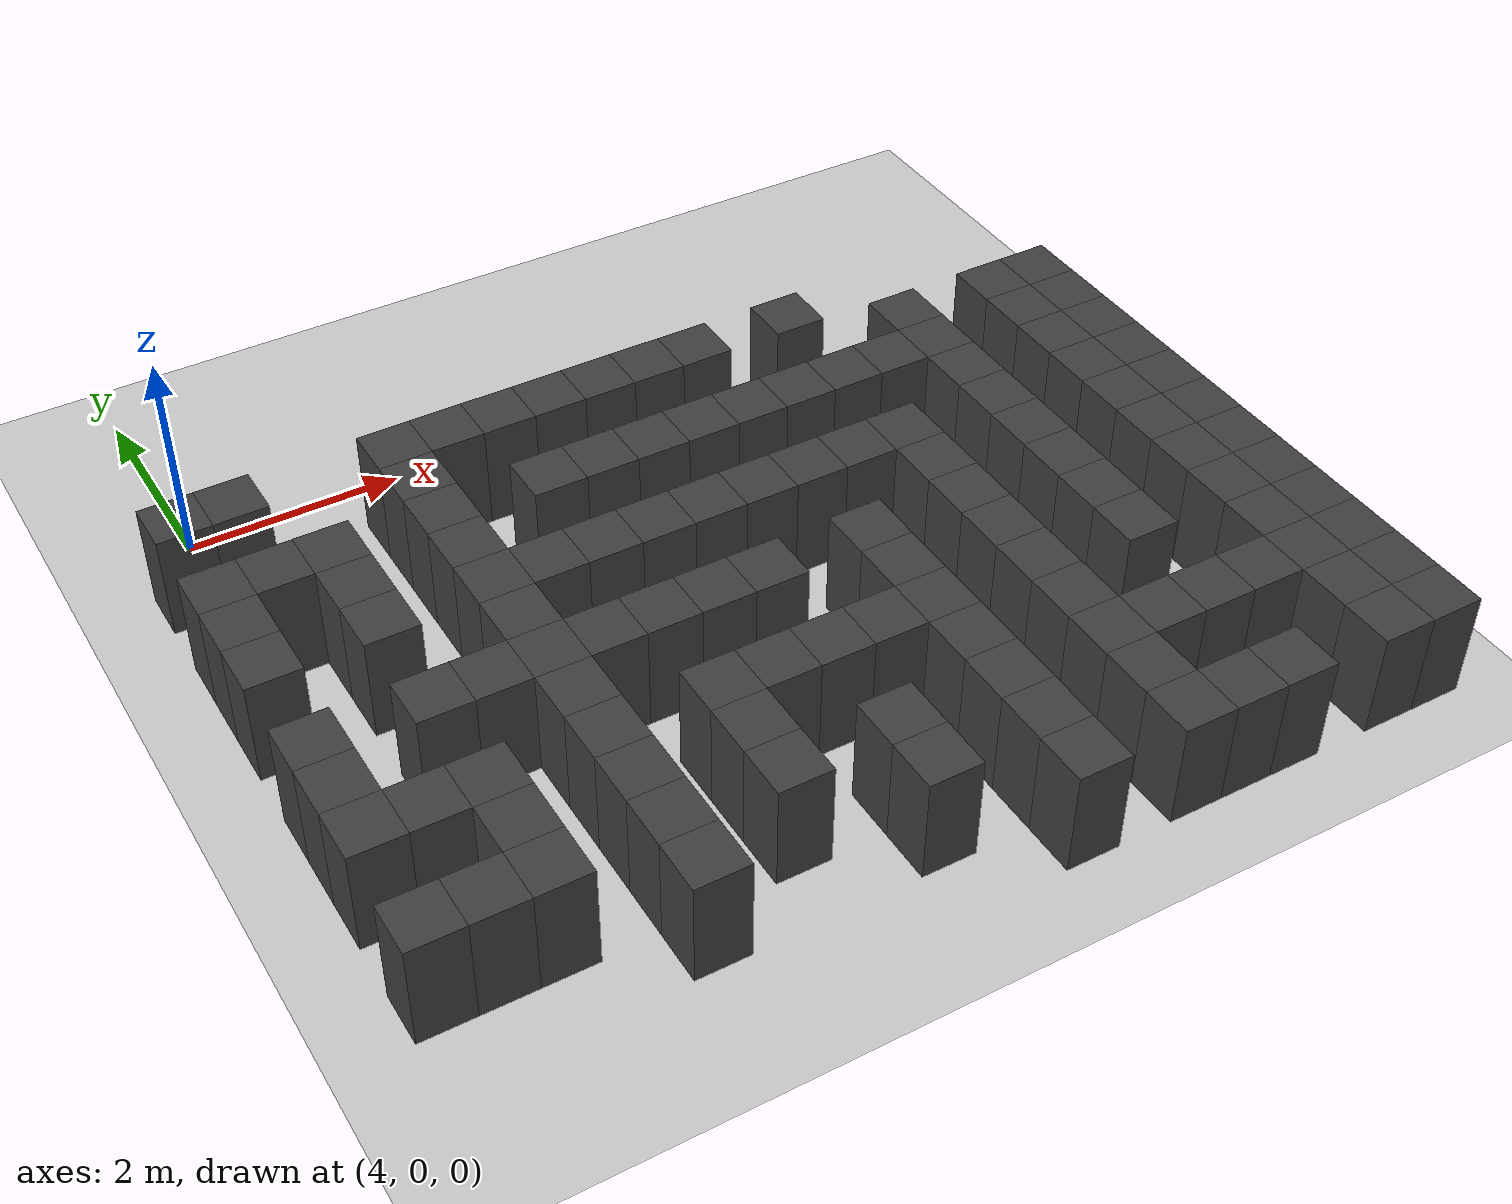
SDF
<sdf version="1.7">
 <world name="map_18553">
  <model name="ground_plane">
   <static>true</static>
   <link name="link">
    <collision name="collision">
     <geometry><plane><normal>0 0 1</normal><size>200 200</size></plane></geometry>
    </collision>
    <visual name="visual">
     <geometry><plane><normal>0 0 1</normal><size>200 200</size></plane></geometry>
     <material><ambient>0.8 0.8 0.8 1</ambient><diffuse>0.8 0.8 0.8 1</diffuse></material>
    </visual>
   </link>
  </model>
  <model name="maze_environment">
   <static>true</static>
   <link name="wall_677">
    <pose>3.750 -0.750 0.500 0 0 0</pose>
    <collision name="col"><geometry><box><size>0.5 0.5 1.0</size></box></geometry></collision>
    <visual name="vis">
     <geometry><box><size>0.5 0.5 1.0</size></box></geometry>
     <material><ambient>0.15 0.15 0.15 1</ambient><diffuse>0.25 0.25 0.25 1</diffuse></material>
    </visual>
   </link>
   <link name="wall_678">
    <pose>4.250 -0.750 0.500 0 0 0</pose>
    <collision name="col"><geometry><box><size>0.5 0.5 1.0</size></box></geometry></collision>
    <visual name="vis">
     <geometry><box><size>0.5 0.5 1.0</size></box></geometry>
     <material><ambient>0.15 0.15 0.15 1</ambient><diffuse>0.25 0.25 0.25 1</diffuse></material>
    </visual>
   </link>
   <link name="wall_679">
    <pose>5.750 -0.750 0.500 0 0 0</pose>
    <collision name="col"><geometry><box><size>0.5 0.5 1.0</size></box></geometry></collision>
    <visual name="vis">
     <geometry><box><size>0.5 0.5 1.0</size></box></geometry>
     <material><ambient>0.15 0.15 0.15 1</ambient><diffuse>0.25 0.25 0.25 1</diffuse></material>
    </visual>
   </link>
   <link name="wall_680">
    <pose>6.250 -0.750 0.500 0 0 0</pose>
    <collision name="col"><geometry><box><size>0.5 0.5 1.0</size></box></geometry></collision>
    <visual name="vis">
     <geometry><box><size>0.5 0.5 1.0</size></box></geometry>
     <material><ambient>0.15 0.15 0.15 1</ambient><diffuse>0.25 0.25 0.25 1</diffuse></material>
    </visual>
   </link>
   <link name="wall_681">
    <pose>6.750 -0.750 0.500 0 0 0</pose>
    <collision name="col"><geometry><box><size>0.5 0.5 1.0</size></box></geometry></collision>
    <visual name="vis">
     <geometry><box><size>0.5 0.5 1.0</size></box></geometry>
     <material><ambient>0.15 0.15 0.15 1</ambient><diffuse>0.25 0.25 0.25 1</diffuse></material>
    </visual>
   </link>
   <link name="wall_682">
    <pose>7.250 -0.750 0.500 0 0 0</pose>
    <collision name="col"><geometry><box><size>0.5 0.5 1.0</size></box></geometry></collision>
    <visual name="vis">
     <geometry><box><size>0.5 0.5 1.0</size></box></geometry>
     <material><ambient>0.15 0.15 0.15 1</ambient><diffuse>0.25 0.25 0.25 1</diffuse></material>
    </visual>
   </link>
   <link name="wall_683">
    <pose>7.750 -0.750 0.500 0 0 0</pose>
    <collision name="col"><geometry><box><size>0.5 0.5 1.0</size></box></geometry></collision>
    <visual name="vis">
     <geometry><box><size>0.5 0.5 1.0</size></box></geometry>
     <material><ambient>0.15 0.15 0.15 1</ambient><diffuse>0.25 0.25 0.25 1</diffuse></material>
    </visual>
   </link>
   <link name="wall_684">
    <pose>8.250 -0.750 0.500 0 0 0</pose>
    <collision name="col"><geometry><box><size>0.5 0.5 1.0</size></box></geometry></collision>
    <visual name="vis">
     <geometry><box><size>0.5 0.5 1.0</size></box></geometry>
     <material><ambient>0.15 0.15 0.15 1</ambient><diffuse>0.25 0.25 0.25 1</diffuse></material>
    </visual>
   </link>
   <link name="wall_685">
    <pose>8.750 -0.750 0.500 0 0 0</pose>
    <collision name="col"><geometry><box><size>0.5 0.5 1.0</size></box></geometry></collision>
    <visual name="vis">
     <geometry><box><size>0.5 0.5 1.0</size></box></geometry>
     <material><ambient>0.15 0.15 0.15 1</ambient><diffuse>0.25 0.25 0.25 1</diffuse></material>
    </visual>
   </link>
   <link name="wall_686">
    <pose>9.750 -0.750 0.500 0 0 0</pose>
    <collision name="col"><geometry><box><size>0.5 0.5 1.0</size></box></geometry></collision>
    <visual name="vis">
     <geometry><box><size>0.5 0.5 1.0</size></box></geometry>
     <material><ambient>0.15 0.15 0.15 1</ambient><diffuse>0.25 0.25 0.25 1</diffuse></material>
    </visual>
   </link>
   <link name="wall_700">
    <pose>5.750 -1.250 0.500 0 0 0</pose>
    <collision name="col"><geometry><box><size>0.5 0.5 1.0</size></box></geometry></collision>
    <visual name="vis">
     <geometry><box><size>0.5 0.5 1.0</size></box></geometry>
     <material><ambient>0.15 0.15 0.15 1</ambient><diffuse>0.25 0.25 0.25 1</diffuse></material>
    </visual>
   </link>
   <link name="wall_701">
    <pose>10.750 -1.250 0.500 0 0 0</pose>
    <collision name="col"><geometry><box><size>0.5 0.5 1.0</size></box></geometry></collision>
    <visual name="vis">
     <geometry><box><size>0.5 0.5 1.0</size></box></geometry>
     <material><ambient>0.15 0.15 0.15 1</ambient><diffuse>0.25 0.25 0.25 1</diffuse></material>
    </visual>
   </link>
   <link name="wall_702">
    <pose>11.750 -1.250 0.500 0 0 0</pose>
    <collision name="col"><geometry><box><size>0.5 0.5 1.0</size></box></geometry></collision>
    <visual name="vis">
     <geometry><box><size>0.5 0.5 1.0</size></box></geometry>
     <material><ambient>0.15 0.15 0.15 1</ambient><diffuse>0.25 0.25 0.25 1</diffuse></material>
    </visual>
   </link>
   <link name="wall_703">
    <pose>12.250 -1.250 0.500 0 0 0</pose>
    <collision name="col"><geometry><box><size>0.5 0.5 1.0</size></box></geometry></collision>
    <visual name="vis">
     <geometry><box><size>0.5 0.5 1.0</size></box></geometry>
     <material><ambient>0.15 0.15 0.15 1</ambient><diffuse>0.25 0.25 0.25 1</diffuse></material>
    </visual>
   </link>
   <link name="wall_728">
    <pose>3.750 -1.750 0.500 0 0 0</pose>
    <collision name="col"><geometry><box><size>0.5 0.5 1.0</size></box></geometry></collision>
    <visual name="vis">
     <geometry><box><size>0.5 0.5 1.0</size></box></geometry>
     <material><ambient>0.15 0.15 0.15 1</ambient><diffuse>0.25 0.25 0.25 1</diffuse></material>
    </visual>
   </link>
   <link name="wall_729">
    <pose>4.250 -1.750 0.500 0 0 0</pose>
    <collision name="col"><geometry><box><size>0.5 0.5 1.0</size></box></geometry></collision>
    <visual name="vis">
     <geometry><box><size>0.5 0.5 1.0</size></box></geometry>
     <material><ambient>0.15 0.15 0.15 1</ambient><diffuse>0.25 0.25 0.25 1</diffuse></material>
    </visual>
   </link>
   <link name="wall_730">
    <pose>4.750 -1.750 0.500 0 0 0</pose>
    <collision name="col"><geometry><box><size>0.5 0.5 1.0</size></box></geometry></collision>
    <visual name="vis">
     <geometry><box><size>0.5 0.5 1.0</size></box></geometry>
     <material><ambient>0.15 0.15 0.15 1</ambient><diffuse>0.25 0.25 0.25 1</diffuse></material>
    </visual>
   </link>
   <link name="wall_731">
    <pose>5.750 -1.750 0.500 0 0 0</pose>
    <collision name="col"><geometry><box><size>0.5 0.5 1.0</size></box></geometry></collision>
    <visual name="vis">
     <geometry><box><size>0.5 0.5 1.0</size></box></geometry>
     <material><ambient>0.15 0.15 0.15 1</ambient><diffuse>0.25 0.25 0.25 1</diffuse></material>
    </visual>
   </link>
   <link name="wall_732">
    <pose>6.750 -1.750 0.500 0 0 0</pose>
    <collision name="col"><geometry><box><size>0.5 0.5 1.0</size></box></geometry></collision>
    <visual name="vis">
     <geometry><box><size>0.5 0.5 1.0</size></box></geometry>
     <material><ambient>0.15 0.15 0.15 1</ambient><diffuse>0.25 0.25 0.25 1</diffuse></material>
    </visual>
   </link>
   <link name="wall_733">
    <pose>7.250 -1.750 0.500 0 0 0</pose>
    <collision name="col"><geometry><box><size>0.5 0.5 1.0</size></box></geometry></collision>
    <visual name="vis">
     <geometry><box><size>0.5 0.5 1.0</size></box></geometry>
     <material><ambient>0.15 0.15 0.15 1</ambient><diffuse>0.25 0.25 0.25 1</diffuse></material>
    </visual>
   </link>
   <link name="wall_734">
    <pose>7.750 -1.750 0.500 0 0 0</pose>
    <collision name="col"><geometry><box><size>0.5 0.5 1.0</size></box></geometry></collision>
    <visual name="vis">
     <geometry><box><size>0.5 0.5 1.0</size></box></geometry>
     <material><ambient>0.15 0.15 0.15 1</ambient><diffuse>0.25 0.25 0.25 1</diffuse></material>
    </visual>
   </link>
   <link name="wall_735">
    <pose>8.250 -1.750 0.500 0 0 0</pose>
    <collision name="col"><geometry><box><size>0.5 0.5 1.0</size></box></geometry></collision>
    <visual name="vis">
     <geometry><box><size>0.5 0.5 1.0</size></box></geometry>
     <material><ambient>0.15 0.15 0.15 1</ambient><diffuse>0.25 0.25 0.25 1</diffuse></material>
    </visual>
   </link>
   <link name="wall_736">
    <pose>8.750 -1.750 0.500 0 0 0</pose>
    <collision name="col"><geometry><box><size>0.5 0.5 1.0</size></box></geometry></collision>
    <visual name="vis">
     <geometry><box><size>0.5 0.5 1.0</size></box></geometry>
     <material><ambient>0.15 0.15 0.15 1</ambient><diffuse>0.25 0.25 0.25 1</diffuse></material>
    </visual>
   </link>
   <link name="wall_737">
    <pose>9.250 -1.750 0.500 0 0 0</pose>
    <collision name="col"><geometry><box><size>0.5 0.5 1.0</size></box></geometry></collision>
    <visual name="vis">
     <geometry><box><size>0.5 0.5 1.0</size></box></geometry>
     <material><ambient>0.15 0.15 0.15 1</ambient><diffuse>0.25 0.25 0.25 1</diffuse></material>
    </visual>
   </link>
   <link name="wall_738">
    <pose>9.750 -1.750 0.500 0 0 0</pose>
    <collision name="col"><geometry><box><size>0.5 0.5 1.0</size></box></geometry></collision>
    <visual name="vis">
     <geometry><box><size>0.5 0.5 1.0</size></box></geometry>
     <material><ambient>0.15 0.15 0.15 1</ambient><diffuse>0.25 0.25 0.25 1</diffuse></material>
    </visual>
   </link>
   <link name="wall_739">
    <pose>10.250 -1.750 0.500 0 0 0</pose>
    <collision name="col"><geometry><box><size>0.5 0.5 1.0</size></box></geometry></collision>
    <visual name="vis">
     <geometry><box><size>0.5 0.5 1.0</size></box></geometry>
     <material><ambient>0.15 0.15 0.15 1</ambient><diffuse>0.25 0.25 0.25 1</diffuse></material>
    </visual>
   </link>
   <link name="wall_740">
    <pose>10.750 -1.750 0.500 0 0 0</pose>
    <collision name="col"><geometry><box><size>0.5 0.5 1.0</size></box></geometry></collision>
    <visual name="vis">
     <geometry><box><size>0.5 0.5 1.0</size></box></geometry>
     <material><ambient>0.15 0.15 0.15 1</ambient><diffuse>0.25 0.25 0.25 1</diffuse></material>
    </visual>
   </link>
   <link name="wall_741">
    <pose>11.750 -1.750 0.500 0 0 0</pose>
    <collision name="col"><geometry><box><size>0.5 0.5 1.0</size></box></geometry></collision>
    <visual name="vis">
     <geometry><box><size>0.5 0.5 1.0</size></box></geometry>
     <material><ambient>0.15 0.15 0.15 1</ambient><diffuse>0.25 0.25 0.25 1</diffuse></material>
    </visual>
   </link>
   <link name="wall_742">
    <pose>12.250 -1.750 0.500 0 0 0</pose>
    <collision name="col"><geometry><box><size>0.5 0.5 1.0</size></box></geometry></collision>
    <visual name="vis">
     <geometry><box><size>0.5 0.5 1.0</size></box></geometry>
     <material><ambient>0.15 0.15 0.15 1</ambient><diffuse>0.25 0.25 0.25 1</diffuse></material>
    </visual>
   </link>
   <link name="wall_751">
    <pose>3.750 -2.250 0.500 0 0 0</pose>
    <collision name="col"><geometry><box><size>0.5 0.5 1.0</size></box></geometry></collision>
    <visual name="vis">
     <geometry><box><size>0.5 0.5 1.0</size></box></geometry>
     <material><ambient>0.15 0.15 0.15 1</ambient><diffuse>0.25 0.25 0.25 1</diffuse></material>
    </visual>
   </link>
   <link name="wall_752">
    <pose>4.750 -2.250 0.500 0 0 0</pose>
    <collision name="col"><geometry><box><size>0.5 0.5 1.0</size></box></geometry></collision>
    <visual name="vis">
     <geometry><box><size>0.5 0.5 1.0</size></box></geometry>
     <material><ambient>0.15 0.15 0.15 1</ambient><diffuse>0.25 0.25 0.25 1</diffuse></material>
    </visual>
   </link>
   <link name="wall_753">
    <pose>5.750 -2.250 0.500 0 0 0</pose>
    <collision name="col"><geometry><box><size>0.5 0.5 1.0</size></box></geometry></collision>
    <visual name="vis">
     <geometry><box><size>0.5 0.5 1.0</size></box></geometry>
     <material><ambient>0.15 0.15 0.15 1</ambient><diffuse>0.25 0.25 0.25 1</diffuse></material>
    </visual>
   </link>
   <link name="wall_754">
    <pose>10.750 -2.250 0.500 0 0 0</pose>
    <collision name="col"><geometry><box><size>0.5 0.5 1.0</size></box></geometry></collision>
    <visual name="vis">
     <geometry><box><size>0.5 0.5 1.0</size></box></geometry>
     <material><ambient>0.15 0.15 0.15 1</ambient><diffuse>0.25 0.25 0.25 1</diffuse></material>
    </visual>
   </link>
   <link name="wall_755">
    <pose>11.750 -2.250 0.500 0 0 0</pose>
    <collision name="col"><geometry><box><size>0.5 0.5 1.0</size></box></geometry></collision>
    <visual name="vis">
     <geometry><box><size>0.5 0.5 1.0</size></box></geometry>
     <material><ambient>0.15 0.15 0.15 1</ambient><diffuse>0.25 0.25 0.25 1</diffuse></material>
    </visual>
   </link>
   <link name="wall_756">
    <pose>12.250 -2.250 0.500 0 0 0</pose>
    <collision name="col"><geometry><box><size>0.5 0.5 1.0</size></box></geometry></collision>
    <visual name="vis">
     <geometry><box><size>0.5 0.5 1.0</size></box></geometry>
     <material><ambient>0.15 0.15 0.15 1</ambient><diffuse>0.25 0.25 0.25 1</diffuse></material>
    </visual>
   </link>
   <link name="wall_777">
    <pose>3.750 -2.750 0.500 0 0 0</pose>
    <collision name="col"><geometry><box><size>0.5 0.5 1.0</size></box></geometry></collision>
    <visual name="vis">
     <geometry><box><size>0.5 0.5 1.0</size></box></geometry>
     <material><ambient>0.15 0.15 0.15 1</ambient><diffuse>0.25 0.25 0.25 1</diffuse></material>
    </visual>
   </link>
   <link name="wall_778">
    <pose>4.750 -2.750 0.500 0 0 0</pose>
    <collision name="col"><geometry><box><size>0.5 0.5 1.0</size></box></geometry></collision>
    <visual name="vis">
     <geometry><box><size>0.5 0.5 1.0</size></box></geometry>
     <material><ambient>0.15 0.15 0.15 1</ambient><diffuse>0.25 0.25 0.25 1</diffuse></material>
    </visual>
   </link>
   <link name="wall_779">
    <pose>5.750 -2.750 0.500 0 0 0</pose>
    <collision name="col"><geometry><box><size>0.5 0.5 1.0</size></box></geometry></collision>
    <visual name="vis">
     <geometry><box><size>0.5 0.5 1.0</size></box></geometry>
     <material><ambient>0.15 0.15 0.15 1</ambient><diffuse>0.25 0.25 0.25 1</diffuse></material>
    </visual>
   </link>
   <link name="wall_780">
    <pose>6.250 -2.750 0.500 0 0 0</pose>
    <collision name="col"><geometry><box><size>0.5 0.5 1.0</size></box></geometry></collision>
    <visual name="vis">
     <geometry><box><size>0.5 0.5 1.0</size></box></geometry>
     <material><ambient>0.15 0.15 0.15 1</ambient><diffuse>0.25 0.25 0.25 1</diffuse></material>
    </visual>
   </link>
   <link name="wall_781">
    <pose>6.750 -2.750 0.500 0 0 0</pose>
    <collision name="col"><geometry><box><size>0.5 0.5 1.0</size></box></geometry></collision>
    <visual name="vis">
     <geometry><box><size>0.5 0.5 1.0</size></box></geometry>
     <material><ambient>0.15 0.15 0.15 1</ambient><diffuse>0.25 0.25 0.25 1</diffuse></material>
    </visual>
   </link>
   <link name="wall_782">
    <pose>7.250 -2.750 0.500 0 0 0</pose>
    <collision name="col"><geometry><box><size>0.5 0.5 1.0</size></box></geometry></collision>
    <visual name="vis">
     <geometry><box><size>0.5 0.5 1.0</size></box></geometry>
     <material><ambient>0.15 0.15 0.15 1</ambient><diffuse>0.25 0.25 0.25 1</diffuse></material>
    </visual>
   </link>
   <link name="wall_783">
    <pose>7.750 -2.750 0.500 0 0 0</pose>
    <collision name="col"><geometry><box><size>0.5 0.5 1.0</size></box></geometry></collision>
    <visual name="vis">
     <geometry><box><size>0.5 0.5 1.0</size></box></geometry>
     <material><ambient>0.15 0.15 0.15 1</ambient><diffuse>0.25 0.25 0.25 1</diffuse></material>
    </visual>
   </link>
   <link name="wall_784">
    <pose>8.250 -2.750 0.500 0 0 0</pose>
    <collision name="col"><geometry><box><size>0.5 0.5 1.0</size></box></geometry></collision>
    <visual name="vis">
     <geometry><box><size>0.5 0.5 1.0</size></box></geometry>
     <material><ambient>0.15 0.15 0.15 1</ambient><diffuse>0.25 0.25 0.25 1</diffuse></material>
    </visual>
   </link>
   <link name="wall_785">
    <pose>8.750 -2.750 0.500 0 0 0</pose>
    <collision name="col"><geometry><box><size>0.5 0.5 1.0</size></box></geometry></collision>
    <visual name="vis">
     <geometry><box><size>0.5 0.5 1.0</size></box></geometry>
     <material><ambient>0.15 0.15 0.15 1</ambient><diffuse>0.25 0.25 0.25 1</diffuse></material>
    </visual>
   </link>
   <link name="wall_786">
    <pose>9.250 -2.750 0.500 0 0 0</pose>
    <collision name="col"><geometry><box><size>0.5 0.5 1.0</size></box></geometry></collision>
    <visual name="vis">
     <geometry><box><size>0.5 0.5 1.0</size></box></geometry>
     <material><ambient>0.15 0.15 0.15 1</ambient><diffuse>0.25 0.25 0.25 1</diffuse></material>
    </visual>
   </link>
   <link name="wall_787">
    <pose>9.750 -2.750 0.500 0 0 0</pose>
    <collision name="col"><geometry><box><size>0.5 0.5 1.0</size></box></geometry></collision>
    <visual name="vis">
     <geometry><box><size>0.5 0.5 1.0</size></box></geometry>
     <material><ambient>0.15 0.15 0.15 1</ambient><diffuse>0.25 0.25 0.25 1</diffuse></material>
    </visual>
   </link>
   <link name="wall_788">
    <pose>10.750 -2.750 0.500 0 0 0</pose>
    <collision name="col"><geometry><box><size>0.5 0.5 1.0</size></box></geometry></collision>
    <visual name="vis">
     <geometry><box><size>0.5 0.5 1.0</size></box></geometry>
     <material><ambient>0.15 0.15 0.15 1</ambient><diffuse>0.25 0.25 0.25 1</diffuse></material>
    </visual>
   </link>
   <link name="wall_789">
    <pose>11.750 -2.750 0.500 0 0 0</pose>
    <collision name="col"><geometry><box><size>0.5 0.5 1.0</size></box></geometry></collision>
    <visual name="vis">
     <geometry><box><size>0.5 0.5 1.0</size></box></geometry>
     <material><ambient>0.15 0.15 0.15 1</ambient><diffuse>0.25 0.25 0.25 1</diffuse></material>
    </visual>
   </link>
   <link name="wall_790">
    <pose>12.250 -2.750 0.500 0 0 0</pose>
    <collision name="col"><geometry><box><size>0.5 0.5 1.0</size></box></geometry></collision>
    <visual name="vis">
     <geometry><box><size>0.5 0.5 1.0</size></box></geometry>
     <material><ambient>0.15 0.15 0.15 1</ambient><diffuse>0.25 0.25 0.25 1</diffuse></material>
    </visual>
   </link>
   <link name="wall_801">
    <pose>5.750 -3.250 0.500 0 0 0</pose>
    <collision name="col"><geometry><box><size>0.5 0.5 1.0</size></box></geometry></collision>
    <visual name="vis">
     <geometry><box><size>0.5 0.5 1.0</size></box></geometry>
     <material><ambient>0.15 0.15 0.15 1</ambient><diffuse>0.25 0.25 0.25 1</diffuse></material>
    </visual>
   </link>
   <link name="wall_802">
    <pose>9.750 -3.250 0.500 0 0 0</pose>
    <collision name="col"><geometry><box><size>0.5 0.5 1.0</size></box></geometry></collision>
    <visual name="vis">
     <geometry><box><size>0.5 0.5 1.0</size></box></geometry>
     <material><ambient>0.15 0.15 0.15 1</ambient><diffuse>0.25 0.25 0.25 1</diffuse></material>
    </visual>
   </link>
   <link name="wall_803">
    <pose>10.750 -3.250 0.500 0 0 0</pose>
    <collision name="col"><geometry><box><size>0.5 0.5 1.0</size></box></geometry></collision>
    <visual name="vis">
     <geometry><box><size>0.5 0.5 1.0</size></box></geometry>
     <material><ambient>0.15 0.15 0.15 1</ambient><diffuse>0.25 0.25 0.25 1</diffuse></material>
    </visual>
   </link>
   <link name="wall_804">
    <pose>11.750 -3.250 0.500 0 0 0</pose>
    <collision name="col"><geometry><box><size>0.5 0.5 1.0</size></box></geometry></collision>
    <visual name="vis">
     <geometry><box><size>0.5 0.5 1.0</size></box></geometry>
     <material><ambient>0.15 0.15 0.15 1</ambient><diffuse>0.25 0.25 0.25 1</diffuse></material>
    </visual>
   </link>
   <link name="wall_805">
    <pose>12.250 -3.250 0.500 0 0 0</pose>
    <collision name="col"><geometry><box><size>0.5 0.5 1.0</size></box></geometry></collision>
    <visual name="vis">
     <geometry><box><size>0.5 0.5 1.0</size></box></geometry>
     <material><ambient>0.15 0.15 0.15 1</ambient><diffuse>0.25 0.25 0.25 1</diffuse></material>
    </visual>
   </link>
   <link name="wall_829">
    <pose>3.750 -3.750 0.500 0 0 0</pose>
    <collision name="col"><geometry><box><size>0.5 0.5 1.0</size></box></geometry></collision>
    <visual name="vis">
     <geometry><box><size>0.5 0.5 1.0</size></box></geometry>
     <material><ambient>0.15 0.15 0.15 1</ambient><diffuse>0.25 0.25 0.25 1</diffuse></material>
    </visual>
   </link>
   <link name="wall_830">
    <pose>4.750 -3.750 0.500 0 0 0</pose>
    <collision name="col"><geometry><box><size>0.5 0.5 1.0</size></box></geometry></collision>
    <visual name="vis">
     <geometry><box><size>0.5 0.5 1.0</size></box></geometry>
     <material><ambient>0.15 0.15 0.15 1</ambient><diffuse>0.25 0.25 0.25 1</diffuse></material>
    </visual>
   </link>
   <link name="wall_831">
    <pose>5.250 -3.750 0.500 0 0 0</pose>
    <collision name="col"><geometry><box><size>0.5 0.5 1.0</size></box></geometry></collision>
    <visual name="vis">
     <geometry><box><size>0.5 0.5 1.0</size></box></geometry>
     <material><ambient>0.15 0.15 0.15 1</ambient><diffuse>0.25 0.25 0.25 1</diffuse></material>
    </visual>
   </link>
   <link name="wall_832">
    <pose>5.750 -3.750 0.500 0 0 0</pose>
    <collision name="col"><geometry><box><size>0.5 0.5 1.0</size></box></geometry></collision>
    <visual name="vis">
     <geometry><box><size>0.5 0.5 1.0</size></box></geometry>
     <material><ambient>0.15 0.15 0.15 1</ambient><diffuse>0.25 0.25 0.25 1</diffuse></material>
    </visual>
   </link>
   <link name="wall_833">
    <pose>6.250 -3.750 0.500 0 0 0</pose>
    <collision name="col"><geometry><box><size>0.5 0.5 1.0</size></box></geometry></collision>
    <visual name="vis">
     <geometry><box><size>0.5 0.5 1.0</size></box></geometry>
     <material><ambient>0.15 0.15 0.15 1</ambient><diffuse>0.25 0.25 0.25 1</diffuse></material>
    </visual>
   </link>
   <link name="wall_834">
    <pose>6.750 -3.750 0.500 0 0 0</pose>
    <collision name="col"><geometry><box><size>0.5 0.5 1.0</size></box></geometry></collision>
    <visual name="vis">
     <geometry><box><size>0.5 0.5 1.0</size></box></geometry>
     <material><ambient>0.15 0.15 0.15 1</ambient><diffuse>0.25 0.25 0.25 1</diffuse></material>
    </visual>
   </link>
   <link name="wall_835">
    <pose>7.250 -3.750 0.500 0 0 0</pose>
    <collision name="col"><geometry><box><size>0.5 0.5 1.0</size></box></geometry></collision>
    <visual name="vis">
     <geometry><box><size>0.5 0.5 1.0</size></box></geometry>
     <material><ambient>0.15 0.15 0.15 1</ambient><diffuse>0.25 0.25 0.25 1</diffuse></material>
    </visual>
   </link>
   <link name="wall_836">
    <pose>7.750 -3.750 0.500 0 0 0</pose>
    <collision name="col"><geometry><box><size>0.5 0.5 1.0</size></box></geometry></collision>
    <visual name="vis">
     <geometry><box><size>0.5 0.5 1.0</size></box></geometry>
     <material><ambient>0.15 0.15 0.15 1</ambient><diffuse>0.25 0.25 0.25 1</diffuse></material>
    </visual>
   </link>
   <link name="wall_837">
    <pose>8.750 -3.750 0.500 0 0 0</pose>
    <collision name="col"><geometry><box><size>0.5 0.5 1.0</size></box></geometry></collision>
    <visual name="vis">
     <geometry><box><size>0.5 0.5 1.0</size></box></geometry>
     <material><ambient>0.15 0.15 0.15 1</ambient><diffuse>0.25 0.25 0.25 1</diffuse></material>
    </visual>
   </link>
   <link name="wall_838">
    <pose>9.750 -3.750 0.500 0 0 0</pose>
    <collision name="col"><geometry><box><size>0.5 0.5 1.0</size></box></geometry></collision>
    <visual name="vis">
     <geometry><box><size>0.5 0.5 1.0</size></box></geometry>
     <material><ambient>0.15 0.15 0.15 1</ambient><diffuse>0.25 0.25 0.25 1</diffuse></material>
    </visual>
   </link>
   <link name="wall_839">
    <pose>10.750 -3.750 0.500 0 0 0</pose>
    <collision name="col"><geometry><box><size>0.5 0.5 1.0</size></box></geometry></collision>
    <visual name="vis">
     <geometry><box><size>0.5 0.5 1.0</size></box></geometry>
     <material><ambient>0.15 0.15 0.15 1</ambient><diffuse>0.25 0.25 0.25 1</diffuse></material>
    </visual>
   </link>
   <link name="wall_840">
    <pose>11.750 -3.750 0.500 0 0 0</pose>
    <collision name="col"><geometry><box><size>0.5 0.5 1.0</size></box></geometry></collision>
    <visual name="vis">
     <geometry><box><size>0.5 0.5 1.0</size></box></geometry>
     <material><ambient>0.15 0.15 0.15 1</ambient><diffuse>0.25 0.25 0.25 1</diffuse></material>
    </visual>
   </link>
   <link name="wall_841">
    <pose>12.250 -3.750 0.500 0 0 0</pose>
    <collision name="col"><geometry><box><size>0.5 0.5 1.0</size></box></geometry></collision>
    <visual name="vis">
     <geometry><box><size>0.5 0.5 1.0</size></box></geometry>
     <material><ambient>0.15 0.15 0.15 1</ambient><diffuse>0.25 0.25 0.25 1</diffuse></material>
    </visual>
   </link>
   <link name="wall_846">
    <pose>3.750 -4.250 0.500 0 0 0</pose>
    <collision name="col"><geometry><box><size>0.5 0.5 1.0</size></box></geometry></collision>
    <visual name="vis">
     <geometry><box><size>0.5 0.5 1.0</size></box></geometry>
     <material><ambient>0.15 0.15 0.15 1</ambient><diffuse>0.25 0.25 0.25 1</diffuse></material>
    </visual>
   </link>
   <link name="wall_847">
    <pose>5.750 -4.250 0.500 0 0 0</pose>
    <collision name="col"><geometry><box><size>0.5 0.5 1.0</size></box></geometry></collision>
    <visual name="vis">
     <geometry><box><size>0.5 0.5 1.0</size></box></geometry>
     <material><ambient>0.15 0.15 0.15 1</ambient><diffuse>0.25 0.25 0.25 1</diffuse></material>
    </visual>
   </link>
   <link name="wall_848">
    <pose>8.750 -4.250 0.500 0 0 0</pose>
    <collision name="col"><geometry><box><size>0.5 0.5 1.0</size></box></geometry></collision>
    <visual name="vis">
     <geometry><box><size>0.5 0.5 1.0</size></box></geometry>
     <material><ambient>0.15 0.15 0.15 1</ambient><diffuse>0.25 0.25 0.25 1</diffuse></material>
    </visual>
   </link>
   <link name="wall_849">
    <pose>9.750 -4.250 0.500 0 0 0</pose>
    <collision name="col"><geometry><box><size>0.5 0.5 1.0</size></box></geometry></collision>
    <visual name="vis">
     <geometry><box><size>0.5 0.5 1.0</size></box></geometry>
     <material><ambient>0.15 0.15 0.15 1</ambient><diffuse>0.25 0.25 0.25 1</diffuse></material>
    </visual>
   </link>
   <link name="wall_850">
    <pose>10.750 -4.250 0.500 0 0 0</pose>
    <collision name="col"><geometry><box><size>0.5 0.5 1.0</size></box></geometry></collision>
    <visual name="vis">
     <geometry><box><size>0.5 0.5 1.0</size></box></geometry>
     <material><ambient>0.15 0.15 0.15 1</ambient><diffuse>0.25 0.25 0.25 1</diffuse></material>
    </visual>
   </link>
   <link name="wall_851">
    <pose>11.750 -4.250 0.500 0 0 0</pose>
    <collision name="col"><geometry><box><size>0.5 0.5 1.0</size></box></geometry></collision>
    <visual name="vis">
     <geometry><box><size>0.5 0.5 1.0</size></box></geometry>
     <material><ambient>0.15 0.15 0.15 1</ambient><diffuse>0.25 0.25 0.25 1</diffuse></material>
    </visual>
   </link>
   <link name="wall_852">
    <pose>12.250 -4.250 0.500 0 0 0</pose>
    <collision name="col"><geometry><box><size>0.5 0.5 1.0</size></box></geometry></collision>
    <visual name="vis">
     <geometry><box><size>0.5 0.5 1.0</size></box></geometry>
     <material><ambient>0.15 0.15 0.15 1</ambient><diffuse>0.25 0.25 0.25 1</diffuse></material>
    </visual>
   </link>
   <link name="wall_879">
    <pose>3.750 -4.750 0.500 0 0 0</pose>
    <collision name="col"><geometry><box><size>0.5 0.5 1.0</size></box></geometry></collision>
    <visual name="vis">
     <geometry><box><size>0.5 0.5 1.0</size></box></geometry>
     <material><ambient>0.15 0.15 0.15 1</ambient><diffuse>0.25 0.25 0.25 1</diffuse></material>
    </visual>
   </link>
   <link name="wall_880">
    <pose>4.250 -4.750 0.500 0 0 0</pose>
    <collision name="col"><geometry><box><size>0.5 0.5 1.0</size></box></geometry></collision>
    <visual name="vis">
     <geometry><box><size>0.5 0.5 1.0</size></box></geometry>
     <material><ambient>0.15 0.15 0.15 1</ambient><diffuse>0.25 0.25 0.25 1</diffuse></material>
    </visual>
   </link>
   <link name="wall_881">
    <pose>4.750 -4.750 0.500 0 0 0</pose>
    <collision name="col"><geometry><box><size>0.5 0.5 1.0</size></box></geometry></collision>
    <visual name="vis">
     <geometry><box><size>0.5 0.5 1.0</size></box></geometry>
     <material><ambient>0.15 0.15 0.15 1</ambient><diffuse>0.25 0.25 0.25 1</diffuse></material>
    </visual>
   </link>
   <link name="wall_882">
    <pose>5.750 -4.750 0.500 0 0 0</pose>
    <collision name="col"><geometry><box><size>0.5 0.5 1.0</size></box></geometry></collision>
    <visual name="vis">
     <geometry><box><size>0.5 0.5 1.0</size></box></geometry>
     <material><ambient>0.15 0.15 0.15 1</ambient><diffuse>0.25 0.25 0.25 1</diffuse></material>
    </visual>
   </link>
   <link name="wall_883">
    <pose>6.750 -4.750 0.500 0 0 0</pose>
    <collision name="col"><geometry><box><size>0.5 0.5 1.0</size></box></geometry></collision>
    <visual name="vis">
     <geometry><box><size>0.5 0.5 1.0</size></box></geometry>
     <material><ambient>0.15 0.15 0.15 1</ambient><diffuse>0.25 0.25 0.25 1</diffuse></material>
    </visual>
   </link>
   <link name="wall_884">
    <pose>7.250 -4.750 0.500 0 0 0</pose>
    <collision name="col"><geometry><box><size>0.5 0.5 1.0</size></box></geometry></collision>
    <visual name="vis">
     <geometry><box><size>0.5 0.5 1.0</size></box></geometry>
     <material><ambient>0.15 0.15 0.15 1</ambient><diffuse>0.25 0.25 0.25 1</diffuse></material>
    </visual>
   </link>
   <link name="wall_885">
    <pose>7.750 -4.750 0.500 0 0 0</pose>
    <collision name="col"><geometry><box><size>0.5 0.5 1.0</size></box></geometry></collision>
    <visual name="vis">
     <geometry><box><size>0.5 0.5 1.0</size></box></geometry>
     <material><ambient>0.15 0.15 0.15 1</ambient><diffuse>0.25 0.25 0.25 1</diffuse></material>
    </visual>
   </link>
   <link name="wall_886">
    <pose>8.250 -4.750 0.500 0 0 0</pose>
    <collision name="col"><geometry><box><size>0.5 0.5 1.0</size></box></geometry></collision>
    <visual name="vis">
     <geometry><box><size>0.5 0.5 1.0</size></box></geometry>
     <material><ambient>0.15 0.15 0.15 1</ambient><diffuse>0.25 0.25 0.25 1</diffuse></material>
    </visual>
   </link>
   <link name="wall_887">
    <pose>8.750 -4.750 0.500 0 0 0</pose>
    <collision name="col"><geometry><box><size>0.5 0.5 1.0</size></box></geometry></collision>
    <visual name="vis">
     <geometry><box><size>0.5 0.5 1.0</size></box></geometry>
     <material><ambient>0.15 0.15 0.15 1</ambient><diffuse>0.25 0.25 0.25 1</diffuse></material>
    </visual>
   </link>
   <link name="wall_888">
    <pose>9.750 -4.750 0.500 0 0 0</pose>
    <collision name="col"><geometry><box><size>0.5 0.5 1.0</size></box></geometry></collision>
    <visual name="vis">
     <geometry><box><size>0.5 0.5 1.0</size></box></geometry>
     <material><ambient>0.15 0.15 0.15 1</ambient><diffuse>0.25 0.25 0.25 1</diffuse></material>
    </visual>
   </link>
   <link name="wall_889">
    <pose>10.750 -4.750 0.500 0 0 0</pose>
    <collision name="col"><geometry><box><size>0.5 0.5 1.0</size></box></geometry></collision>
    <visual name="vis">
     <geometry><box><size>0.5 0.5 1.0</size></box></geometry>
     <material><ambient>0.15 0.15 0.15 1</ambient><diffuse>0.25 0.25 0.25 1</diffuse></material>
    </visual>
   </link>
   <link name="wall_890">
    <pose>11.750 -4.750 0.500 0 0 0</pose>
    <collision name="col"><geometry><box><size>0.5 0.5 1.0</size></box></geometry></collision>
    <visual name="vis">
     <geometry><box><size>0.5 0.5 1.0</size></box></geometry>
     <material><ambient>0.15 0.15 0.15 1</ambient><diffuse>0.25 0.25 0.25 1</diffuse></material>
    </visual>
   </link>
   <link name="wall_891">
    <pose>12.250 -4.750 0.500 0 0 0</pose>
    <collision name="col"><geometry><box><size>0.5 0.5 1.0</size></box></geometry></collision>
    <visual name="vis">
     <geometry><box><size>0.5 0.5 1.0</size></box></geometry>
     <material><ambient>0.15 0.15 0.15 1</ambient><diffuse>0.25 0.25 0.25 1</diffuse></material>
    </visual>
   </link>
   <link name="wall_897">
    <pose>4.750 -5.250 0.500 0 0 0</pose>
    <collision name="col"><geometry><box><size>0.5 0.5 1.0</size></box></geometry></collision>
    <visual name="vis">
     <geometry><box><size>0.5 0.5 1.0</size></box></geometry>
     <material><ambient>0.15 0.15 0.15 1</ambient><diffuse>0.25 0.25 0.25 1</diffuse></material>
    </visual>
   </link>
   <link name="wall_898">
    <pose>5.750 -5.250 0.500 0 0 0</pose>
    <collision name="col"><geometry><box><size>0.5 0.5 1.0</size></box></geometry></collision>
    <visual name="vis">
     <geometry><box><size>0.5 0.5 1.0</size></box></geometry>
     <material><ambient>0.15 0.15 0.15 1</ambient><diffuse>0.25 0.25 0.25 1</diffuse></material>
    </visual>
   </link>
   <link name="wall_899">
    <pose>6.750 -5.250 0.500 0 0 0</pose>
    <collision name="col"><geometry><box><size>0.5 0.5 1.0</size></box></geometry></collision>
    <visual name="vis">
     <geometry><box><size>0.5 0.5 1.0</size></box></geometry>
     <material><ambient>0.15 0.15 0.15 1</ambient><diffuse>0.25 0.25 0.25 1</diffuse></material>
    </visual>
   </link>
   <link name="wall_900">
    <pose>8.750 -5.250 0.500 0 0 0</pose>
    <collision name="col"><geometry><box><size>0.5 0.5 1.0</size></box></geometry></collision>
    <visual name="vis">
     <geometry><box><size>0.5 0.5 1.0</size></box></geometry>
     <material><ambient>0.15 0.15 0.15 1</ambient><diffuse>0.25 0.25 0.25 1</diffuse></material>
    </visual>
   </link>
   <link name="wall_901">
    <pose>9.750 -5.250 0.500 0 0 0</pose>
    <collision name="col"><geometry><box><size>0.5 0.5 1.0</size></box></geometry></collision>
    <visual name="vis">
     <geometry><box><size>0.5 0.5 1.0</size></box></geometry>
     <material><ambient>0.15 0.15 0.15 1</ambient><diffuse>0.25 0.25 0.25 1</diffuse></material>
    </visual>
   </link>
   <link name="wall_902">
    <pose>11.750 -5.250 0.500 0 0 0</pose>
    <collision name="col"><geometry><box><size>0.5 0.5 1.0</size></box></geometry></collision>
    <visual name="vis">
     <geometry><box><size>0.5 0.5 1.0</size></box></geometry>
     <material><ambient>0.15 0.15 0.15 1</ambient><diffuse>0.25 0.25 0.25 1</diffuse></material>
    </visual>
   </link>
   <link name="wall_903">
    <pose>12.250 -5.250 0.500 0 0 0</pose>
    <collision name="col"><geometry><box><size>0.5 0.5 1.0</size></box></geometry></collision>
    <visual name="vis">
     <geometry><box><size>0.5 0.5 1.0</size></box></geometry>
     <material><ambient>0.15 0.15 0.15 1</ambient><diffuse>0.25 0.25 0.25 1</diffuse></material>
    </visual>
   </link>
   <link name="wall_932">
    <pose>3.750 -5.750 0.500 0 0 0</pose>
    <collision name="col"><geometry><box><size>0.5 0.5 1.0</size></box></geometry></collision>
    <visual name="vis">
     <geometry><box><size>0.5 0.5 1.0</size></box></geometry>
     <material><ambient>0.15 0.15 0.15 1</ambient><diffuse>0.25 0.25 0.25 1</diffuse></material>
    </visual>
   </link>
   <link name="wall_933">
    <pose>4.250 -5.750 0.500 0 0 0</pose>
    <collision name="col"><geometry><box><size>0.5 0.5 1.0</size></box></geometry></collision>
    <visual name="vis">
     <geometry><box><size>0.5 0.5 1.0</size></box></geometry>
     <material><ambient>0.15 0.15 0.15 1</ambient><diffuse>0.25 0.25 0.25 1</diffuse></material>
    </visual>
   </link>
   <link name="wall_934">
    <pose>4.750 -5.750 0.500 0 0 0</pose>
    <collision name="col"><geometry><box><size>0.5 0.5 1.0</size></box></geometry></collision>
    <visual name="vis">
     <geometry><box><size>0.5 0.5 1.0</size></box></geometry>
     <material><ambient>0.15 0.15 0.15 1</ambient><diffuse>0.25 0.25 0.25 1</diffuse></material>
    </visual>
   </link>
   <link name="wall_935">
    <pose>5.750 -5.750 0.500 0 0 0</pose>
    <collision name="col"><geometry><box><size>0.5 0.5 1.0</size></box></geometry></collision>
    <visual name="vis">
     <geometry><box><size>0.5 0.5 1.0</size></box></geometry>
     <material><ambient>0.15 0.15 0.15 1</ambient><diffuse>0.25 0.25 0.25 1</diffuse></material>
    </visual>
   </link>
   <link name="wall_936">
    <pose>6.750 -5.750 0.500 0 0 0</pose>
    <collision name="col"><geometry><box><size>0.5 0.5 1.0</size></box></geometry></collision>
    <visual name="vis">
     <geometry><box><size>0.5 0.5 1.0</size></box></geometry>
     <material><ambient>0.15 0.15 0.15 1</ambient><diffuse>0.25 0.25 0.25 1</diffuse></material>
    </visual>
   </link>
   <link name="wall_937">
    <pose>7.750 -5.750 0.500 0 0 0</pose>
    <collision name="col"><geometry><box><size>0.5 0.5 1.0</size></box></geometry></collision>
    <visual name="vis">
     <geometry><box><size>0.5 0.5 1.0</size></box></geometry>
     <material><ambient>0.15 0.15 0.15 1</ambient><diffuse>0.25 0.25 0.25 1</diffuse></material>
    </visual>
   </link>
   <link name="wall_938">
    <pose>8.750 -5.750 0.500 0 0 0</pose>
    <collision name="col"><geometry><box><size>0.5 0.5 1.0</size></box></geometry></collision>
    <visual name="vis">
     <geometry><box><size>0.5 0.5 1.0</size></box></geometry>
     <material><ambient>0.15 0.15 0.15 1</ambient><diffuse>0.25 0.25 0.25 1</diffuse></material>
    </visual>
   </link>
   <link name="wall_939">
    <pose>9.750 -5.750 0.500 0 0 0</pose>
    <collision name="col"><geometry><box><size>0.5 0.5 1.0</size></box></geometry></collision>
    <visual name="vis">
     <geometry><box><size>0.5 0.5 1.0</size></box></geometry>
     <material><ambient>0.15 0.15 0.15 1</ambient><diffuse>0.25 0.25 0.25 1</diffuse></material>
    </visual>
   </link>
   <link name="wall_940">
    <pose>10.250 -5.750 0.500 0 0 0</pose>
    <collision name="col"><geometry><box><size>0.5 0.5 1.0</size></box></geometry></collision>
    <visual name="vis">
     <geometry><box><size>0.5 0.5 1.0</size></box></geometry>
     <material><ambient>0.15 0.15 0.15 1</ambient><diffuse>0.25 0.25 0.25 1</diffuse></material>
    </visual>
   </link>
   <link name="wall_941">
    <pose>10.750 -5.750 0.500 0 0 0</pose>
    <collision name="col"><geometry><box><size>0.5 0.5 1.0</size></box></geometry></collision>
    <visual name="vis">
     <geometry><box><size>0.5 0.5 1.0</size></box></geometry>
     <material><ambient>0.15 0.15 0.15 1</ambient><diffuse>0.25 0.25 0.25 1</diffuse></material>
    </visual>
   </link>
   <link name="wall_942">
    <pose>11.250 -5.750 0.500 0 0 0</pose>
    <collision name="col"><geometry><box><size>0.5 0.5 1.0</size></box></geometry></collision>
    <visual name="vis">
     <geometry><box><size>0.5 0.5 1.0</size></box></geometry>
     <material><ambient>0.15 0.15 0.15 1</ambient><diffuse>0.25 0.25 0.25 1</diffuse></material>
    </visual>
   </link>
   <link name="wall_943">
    <pose>11.750 -5.750 0.500 0 0 0</pose>
    <collision name="col"><geometry><box><size>0.5 0.5 1.0</size></box></geometry></collision>
    <visual name="vis">
     <geometry><box><size>0.5 0.5 1.0</size></box></geometry>
     <material><ambient>0.15 0.15 0.15 1</ambient><diffuse>0.25 0.25 0.25 1</diffuse></material>
    </visual>
   </link>
   <link name="wall_944">
    <pose>12.250 -5.750 0.500 0 0 0</pose>
    <collision name="col"><geometry><box><size>0.5 0.5 1.0</size></box></geometry></collision>
    <visual name="vis">
     <geometry><box><size>0.5 0.5 1.0</size></box></geometry>
     <material><ambient>0.15 0.15 0.15 1</ambient><diffuse>0.25 0.25 0.25 1</diffuse></material>
    </visual>
   </link>
   <link name="wall_951">
    <pose>5.750 -6.250 0.500 0 0 0</pose>
    <collision name="col"><geometry><box><size>0.5 0.5 1.0</size></box></geometry></collision>
    <visual name="vis">
     <geometry><box><size>0.5 0.5 1.0</size></box></geometry>
     <material><ambient>0.15 0.15 0.15 1</ambient><diffuse>0.25 0.25 0.25 1</diffuse></material>
    </visual>
   </link>
   <link name="wall_952">
    <pose>7.750 -6.250 0.500 0 0 0</pose>
    <collision name="col"><geometry><box><size>0.5 0.5 1.0</size></box></geometry></collision>
    <visual name="vis">
     <geometry><box><size>0.5 0.5 1.0</size></box></geometry>
     <material><ambient>0.15 0.15 0.15 1</ambient><diffuse>0.25 0.25 0.25 1</diffuse></material>
    </visual>
   </link>
   <link name="wall_953">
    <pose>8.750 -6.250 0.500 0 0 0</pose>
    <collision name="col"><geometry><box><size>0.5 0.5 1.0</size></box></geometry></collision>
    <visual name="vis">
     <geometry><box><size>0.5 0.5 1.0</size></box></geometry>
     <material><ambient>0.15 0.15 0.15 1</ambient><diffuse>0.25 0.25 0.25 1</diffuse></material>
    </visual>
   </link>
   <link name="wall_954">
    <pose>9.750 -6.250 0.500 0 0 0</pose>
    <collision name="col"><geometry><box><size>0.5 0.5 1.0</size></box></geometry></collision>
    <visual name="vis">
     <geometry><box><size>0.5 0.5 1.0</size></box></geometry>
     <material><ambient>0.15 0.15 0.15 1</ambient><diffuse>0.25 0.25 0.25 1</diffuse></material>
    </visual>
   </link>
   <link name="wall_955">
    <pose>11.750 -6.250 0.500 0 0 0</pose>
    <collision name="col"><geometry><box><size>0.5 0.5 1.0</size></box></geometry></collision>
    <visual name="vis">
     <geometry><box><size>0.5 0.5 1.0</size></box></geometry>
     <material><ambient>0.15 0.15 0.15 1</ambient><diffuse>0.25 0.25 0.25 1</diffuse></material>
    </visual>
   </link>
   <link name="wall_956">
    <pose>12.250 -6.250 0.500 0 0 0</pose>
    <collision name="col"><geometry><box><size>0.5 0.5 1.0</size></box></geometry></collision>
    <visual name="vis">
     <geometry><box><size>0.5 0.5 1.0</size></box></geometry>
     <material><ambient>0.15 0.15 0.15 1</ambient><diffuse>0.25 0.25 0.25 1</diffuse></material>
    </visual>
   </link>
   <link name="wall_986">
    <pose>8.750 -6.750 0.500 0 0 0</pose>
    <collision name="col"><geometry><box><size>0.5 0.5 1.0</size></box></geometry></collision>
    <visual name="vis">
     <geometry><box><size>0.5 0.5 1.0</size></box></geometry>
     <material><ambient>0.15 0.15 0.15 1</ambient><diffuse>0.25 0.25 0.25 1</diffuse></material>
    </visual>
   </link>
   <link name="wall_987">
    <pose>9.750 -6.750 0.500 0 0 0</pose>
    <collision name="col"><geometry><box><size>0.5 0.5 1.0</size></box></geometry></collision>
    <visual name="vis">
     <geometry><box><size>0.5 0.5 1.0</size></box></geometry>
     <material><ambient>0.15 0.15 0.15 1</ambient><diffuse>0.25 0.25 0.25 1</diffuse></material>
    </visual>
   </link>
   <link name="wall_988">
    <pose>10.250 -6.750 0.500 0 0 0</pose>
    <collision name="col"><geometry><box><size>0.5 0.5 1.0</size></box></geometry></collision>
    <visual name="vis">
     <geometry><box><size>0.5 0.5 1.0</size></box></geometry>
     <material><ambient>0.15 0.15 0.15 1</ambient><diffuse>0.25 0.25 0.25 1</diffuse></material>
    </visual>
   </link>
   <link name="wall_989">
    <pose>10.750 -6.750 0.500 0 0 0</pose>
    <collision name="col"><geometry><box><size>0.5 0.5 1.0</size></box></geometry></collision>
    <visual name="vis">
     <geometry><box><size>0.5 0.5 1.0</size></box></geometry>
     <material><ambient>0.15 0.15 0.15 1</ambient><diffuse>0.25 0.25 0.25 1</diffuse></material>
    </visual>
   </link>
   <link name="wall_990">
    <pose>11.750 -6.750 0.500 0 0 0</pose>
    <collision name="col"><geometry><box><size>0.5 0.5 1.0</size></box></geometry></collision>
    <visual name="vis">
     <geometry><box><size>0.5 0.5 1.0</size></box></geometry>
     <material><ambient>0.15 0.15 0.15 1</ambient><diffuse>0.25 0.25 0.25 1</diffuse></material>
    </visual>
   </link>
   <link name="wall_991">
    <pose>12.250 -6.750 0.500 0 0 0</pose>
    <collision name="col"><geometry><box><size>0.5 0.5 1.0</size></box></geometry></collision>
    <visual name="vis">
     <geometry><box><size>0.5 0.5 1.0</size></box></geometry>
     <material><ambient>0.15 0.15 0.15 1</ambient><diffuse>0.25 0.25 0.25 1</diffuse></material>
    </visual>
   </link>
  </model>
 </world>
</sdf>
